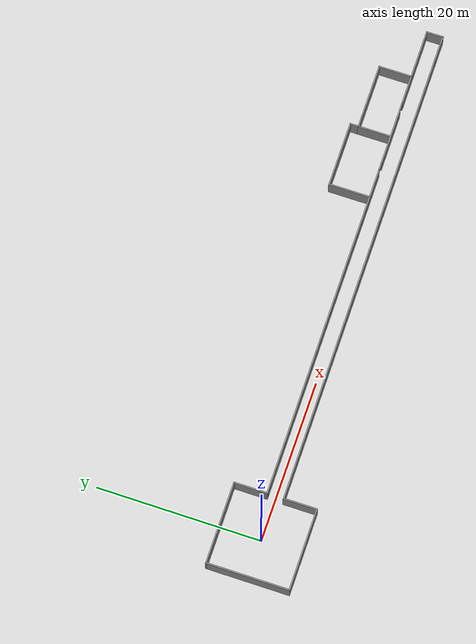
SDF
<sdf version="1.6">
 <world name="default">
  <light name="sun" type="directional">
   <pose>0 0 10 0 -0 0</pose>
   <diffuse>0.8 0.8 0.8 1</diffuse>
   <specular>0.2 0.2 0.2 1</specular>
   <attenuation>
    <range>1000</range>
    <constant>0.9</constant>
    <linear>0.01</linear>
    <quadratic>0.001</quadratic>
   </attenuation>
   <direction>-0.5 0.1 -0.9</direction>
  </light>
  <model name="ground_plane">
   <static>1</static>
   <link name="link">
    <collision name="collision">
     <geometry><plane><normal>0 0 1</normal><size>200 200</size></plane></geometry>
     <surface><friction><ode><mu>100</mu><mu2>50</mu2></ode></friction></surface>
    </collision>
    <visual name="visual">
     <cast_shadows>0</cast_shadows>
     <geometry><plane><normal>0 0 1</normal><size>200 200</size></plane></geometry>
     <material>
      <script><uri>file://media/materials/scripts/gazebo.material</uri><name>Gazebo/Grey</name></script>
     </material>
    </visual>
   </link>
  </model>
  <gravity>0 0 -9.8</gravity>
  <magnetic_field>6e-06 2.3e-05 -4.2e-05</magnetic_field>
  <atmosphere type="adiabatic"/>
  <physics name="default_physics" default="0" type="ode">
   <max_step_size>0.001</max_step_size>
   <real_time_factor>1</real_time_factor>
   <real_time_update_rate>1000</real_time_update_rate>
  </physics>
  <scene><ambient>0.4 0.4 0.4 1</ambient><background>0.7 0.7 0.7 1</background><shadows>1</shadows></scene>
  <spherical_coordinates>
   <surface_model>EARTH_WGS84</surface_model>
   <latitude_deg>0</latitude_deg>
   <longitude_deg>0</longitude_deg>
   <elevation>0</elevation>
   <heading_deg>0</heading_deg>
  </spherical_coordinates>
  <model name="Untitled">
   <pose>30 0.5 0 0 -0 0</pose>
   <link name="Wall_11">
    <collision name="Wall_11_Collision">
     <geometry><box><size>4.15 0.15 2.5</size></box></geometry>
     <pose>0 0 1.25 0 -0 0</pose>
    </collision>
    <visual name="Wall_11_Visual">
     <pose>0 0 1.25 0 -0 0</pose>
     <geometry><box><size>4.15 0.15 2.5</size></box></geometry>
     <material>
      <script><uri>file://media/materials/scripts/gazebo.material</uri><name>Gazebo/Grey</name></script>
      <ambient>1 1 1 1</ambient>
     </material>
     <meta><layer>0</layer></meta>
    </visual>
    <pose>21 2.5 0 0 -0 1.5708</pose>
   </link>
   <link name="Wall_12">
    <collision name="Wall_12_Collision">
     <geometry><box><size>8.15 0.15 2.5</size></box></geometry>
     <pose>0 0 1.25 0 -0 0</pose>
    </collision>
    <visual name="Wall_12_Visual">
     <pose>0 0 1.25 0 -0 0</pose>
     <geometry><box><size>8.15 0.15 2.5</size></box></geometry>
     <material>
      <script><uri>file://media/materials/scripts/gazebo.material</uri><name>Gazebo/Grey</name></script>
      <ambient>1 1 1 1</ambient>
     </material>
     <meta><layer>0</layer></meta>
    </visual>
    <pose>25 4.5 0 0 -0 0</pose>
   </link>
   <link name="Wall_13">
    <collision name="Wall_13_Collision">
     <geometry><box><size>4.15 0.15 2.5</size></box></geometry>
     <pose>0 0 1.25 0 -0 0</pose>
    </collision>
    <visual name="Wall_13_Visual">
     <pose>0 0 1.25 0 -0 0</pose>
     <geometry><box><size>4.15 0.15 2.5</size></box></geometry>
     <material>
      <script><uri>file://media/materials/scripts/gazebo.material</uri><name>Gazebo/Grey</name></script>
      <ambient>1 1 1 1</ambient>
     </material>
     <meta><layer>0</layer></meta>
    </visual>
    <pose>29 2.5 0 0 0 -1.5708</pose>
   </link>
   <link name="Wall_15">
    <collision name="Wall_15_Collision">
     <geometry><box><size>5.15 0.15 2.5</size></box></geometry>
     <pose>0 0 1.25 0 -0 0</pose>
    </collision>
    <visual name="Wall_15_Visual">
     <pose>0 0 1.25 0 -0 0</pose>
     <geometry><box><size>5.15 0.15 2.5</size></box></geometry>
     <material>
      <script><uri>file://media/materials/scripts/gazebo.material</uri><name>Gazebo/Grey</name></script>
      <ambient>1 1 1 1</ambient>
     </material>
     <meta><layer>0</layer></meta>
    </visual>
    <pose>13 3 0 0 -0 1.5708</pose>
   </link>
   <link name="Wall_16">
    <collision name="Wall_16_Collision">
     <geometry><box><size>8.15 0.15 2.5</size></box></geometry>
     <pose>0 0 1.25 0 -0 0</pose>
    </collision>
    <visual name="Wall_16_Visual">
     <pose>0 0 1.25 0 -0 0</pose>
     <geometry><box><size>8.15 0.15 2.5</size></box></geometry>
     <material>
      <script><uri>file://media/materials/scripts/gazebo.material</uri><name>Gazebo/Grey</name></script>
      <ambient>1 1 1 1</ambient>
     </material>
     <meta><layer>0</layer></meta>
    </visual>
    <pose>17 5.5 0 0 -0 0</pose>
   </link>
   <link name="Wall_18">
    <collision name="Wall_18_Collision">
     <geometry><box><size>1.15 0.15 2.5</size></box></geometry>
     <pose>0 0 1.25 0 -0 0</pose>
    </collision>
    <visual name="Wall_18_Visual">
     <pose>0 0 1.25 0 -0 0</pose>
     <geometry><box><size>1.15 0.15 2.5</size></box></geometry>
     <material>
      <script><uri>file://media/materials/scripts/gazebo.material</uri><name>Gazebo/Grey</name></script>
      <ambient>1 1 1 1</ambient>
     </material>
     <meta><layer>0</layer></meta>
    </visual>
    <pose>21 5 0 0 0 -1.5708</pose>
   </link>
   <link name="Wall_2">
    <collision name="Wall_2_Collision">
     <geometry><box><size>4.15 0.15 2.5</size></box></geometry>
     <pose>0 0 1.25 0 -0 0</pose>
    </collision>
    <visual name="Wall_2_Visual">
     <pose>0 0 1.25 0 -0 0</pose>
     <geometry><box><size>4.15 0.15 2.5</size></box></geometry>
     <material>
      <script><uri>file://media/materials/scripts/gazebo.material</uri><name>Gazebo/Grey</name></script>
      <ambient>1 1 1 1</ambient>
     </material>
     <meta><layer>0</layer></meta>
    </visual>
    <pose>-25 2.5 0 0 -0 1.5708</pose>
   </link>
   <link name="Wall_3">
    <collision name="Wall_3_Collision">
     <geometry><box><size>10.15 0.15 2.5</size></box></geometry>
     <pose>0 0 1.25 0 -0 0</pose>
    </collision>
    <visual name="Wall_3_Visual">
     <pose>0 0 1.25 0 -0 0</pose>
     <geometry><box><size>10.15 0.15 2.5</size></box></geometry>
     <material>
      <script><uri>file://media/materials/scripts/gazebo.material</uri><name>Gazebo/Grey</name></script>
      <ambient>1 1 1 1</ambient>
     </material>
     <meta><layer>0</layer></meta>
    </visual>
    <pose>-30 4.5 0 0 -0 3.14159</pose>
   </link>
   <link name="Wall_4">
    <collision name="Wall_4_Collision">
     <geometry><box><size>10.15 0.15 2.5</size></box></geometry>
     <pose>0 0 1.25 0 -0 0</pose>
    </collision>
    <visual name="Wall_4_Visual">
     <pose>0 0 1.25 0 -0 0</pose>
     <geometry><box><size>10.15 0.15 2.5</size></box></geometry>
     <material>
      <script><uri>file://media/materials/scripts/gazebo.material</uri><name>Gazebo/Grey</name></script>
      <ambient>1 1 1 1</ambient>
     </material>
     <meta><layer>0</layer></meta>
    </visual>
    <pose>-35 -0.5 0 0 0 -1.5708</pose>
   </link>
   <link name="Wall_5">
    <collision name="Wall_5_Collision">
     <geometry><box><size>10.15 0.15 2.5</size></box></geometry>
     <pose>0 0 1.25 0 -0 0</pose>
    </collision>
    <visual name="Wall_5_Visual">
     <pose>0 0 1.25 0 -0 0</pose>
     <geometry><box><size>10.15 0.15 2.5</size></box></geometry>
     <material>
      <script><uri>file://media/materials/scripts/gazebo.material</uri><name>Gazebo/Grey</name></script>
      <ambient>1 1 1 1</ambient>
     </material>
     <meta><layer>0</layer></meta>
    </visual>
    <pose>-30 -5.5 0 0 -0 0</pose>
   </link>
   <link name="Wall_6">
    <collision name="Wall_6_Collision">
     <geometry><box><size>4.15 0.15 2.5</size></box></geometry>
     <pose>0 0 1.25 0 -0 0</pose>
    </collision>
    <visual name="Wall_6_Visual">
     <pose>0 0 1.25 0 -0 0</pose>
     <geometry><box><size>4.15 0.15 2.5</size></box></geometry>
     <material>
      <script><uri>file://media/materials/scripts/gazebo.material</uri><name>Gazebo/Grey</name></script>
      <ambient>1 1 1 1</ambient>
     </material>
     <meta><layer>0</layer></meta>
    </visual>
    <pose>-25 -3.5 0 0 -0 1.5708</pose>
   </link>
   <link name="Wall_7">
    <collision name="Wall_7_Collision">
     <geometry><box><size>60.15 0.15 2.5</size></box></geometry>
     <pose>0 0 1.25 0 -0 0</pose>
    </collision>
    <visual name="Wall_7_Visual">
     <pose>0 0 1.25 0 -0 0</pose>
     <geometry><box><size>60.15 0.15 2.5</size></box></geometry>
     <material>
      <script><uri>file://media/materials/scripts/gazebo.material</uri><name>Gazebo/Grey</name></script>
      <ambient>1 1 1 1</ambient>
     </material>
     <meta><layer>0</layer></meta>
    </visual>
    <pose>5 -1.5 0 0 -0 0</pose>
   </link>
   <link name="Wall_8">
    <collision name="Wall_8_Collision">
     <geometry><box><size>2.15 0.15 2.5</size></box></geometry>
     <pose>0 0 1.25 0 -0 0</pose>
    </collision>
    <visual name="Wall_8_Visual">
     <pose>0 0 1.25 0 -0 0</pose>
     <geometry><box><size>2.15 0.15 2.5</size></box></geometry>
     <material>
      <script><uri>file://media/materials/scripts/gazebo.material</uri><name>Gazebo/Grey</name></script>
      <ambient>1 1 1 1</ambient>
     </material>
     <meta><layer>0</layer></meta>
    </visual>
    <pose>35 -0.5 0 0 -0 1.5708</pose>
   </link>
   <link name="Wall_9">
    <pose>5 0.5 0 0 -0 3.14159</pose>
    <visual name="Wall_9_Visual_0">
     <pose>-25.2625 0 1.25 0 -0 0</pose>
     <geometry><box><size>9.625 0.15 2.5</size></box></geometry>
     <material>
      <script><uri>file://media/materials/scripts/gazebo.material</uri><name>Gazebo/Grey</name></script>
      <ambient>1 1 1 1</ambient>
     </material>
     <meta><layer>0</layer></meta>
    </visual>
    <collision name="Wall_9_Collision_0">
     <geometry><box><size>9.625 0.15 2.5</size></box></geometry>
     <pose>-25.2625 0 1.25 0 -0 0</pose>
    </collision>
    <visual name="Wall_9_Visual_1">
     <pose>-16 0 1.25 0 -0 0</pose>
     <geometry><box><size>7.1 0.15 2.5</size></box></geometry>
     <material>
      <script><uri>file://media/materials/scripts/gazebo.material</uri><name>Gazebo/Grey</name></script>
      <ambient>1 1 1 1</ambient>
     </material>
     <meta><layer>0</layer></meta>
    </visual>
    <collision name="Wall_9_Collision_1">
     <geometry><box><size>7.1 0.15 2.5</size></box></geometry>
     <pose>-16 0 1.25 0 -0 0</pose>
    </collision>
    <visual name="Wall_9_Visual_2">
     <pose>9.2625 0 1.25 0 -0 0</pose>
     <geometry><box><size>41.625 0.15 2.5</size></box></geometry>
     <material>
      <script><uri>file://media/materials/scripts/gazebo.material</uri><name>Gazebo/Grey</name></script>
      <ambient>1 1 1 1</ambient>
     </material>
     <meta><layer>0</layer></meta>
    </visual>
    <collision name="Wall_9_Collision_2">
     <geometry><box><size>41.625 0.15 2.5</size></box></geometry>
     <pose>9.2625 0 1.25 0 -0 0</pose>
    </collision>
    <visual name="Wall_9_Visual_3">
     <pose>-20 0 2.25 0 -0 0</pose>
     <geometry><box><size>0.9 0.15 0.5</size></box></geometry>
     <material>
      <script><uri>file://media/materials/scripts/gazebo.material</uri><name>Gazebo/Grey</name></script>
      <ambient>1 1 1 1</ambient>
     </material>
     <meta><layer>0</layer></meta>
    </visual>
    <collision name="Wall_9_Collision_3">
     <geometry><box><size>0.9 0.15 0.5</size></box></geometry>
     <pose>-20 0 2.25 0 -0 0</pose>
    </collision>
    <visual name="Wall_9_Visual_4">
     <pose>-12 0 2.25 0 -0 0</pose>
     <geometry><box><size>0.9 0.15 0.5</size></box></geometry>
     <material>
      <script><uri>file://media/materials/scripts/gazebo.material</uri><name>Gazebo/Grey</name></script>
      <ambient>1 1 1 1</ambient>
     </material>
     <meta><layer>0</layer></meta>
    </visual>
    <collision name="Wall_9_Collision_4">
     <geometry><box><size>0.9 0.15 0.5</size></box></geometry>
     <pose>-12 0 2.25 0 -0 0</pose>
    </collision>
   </link>
   <static>1</static>
  </model>
 </world>
</sdf>
